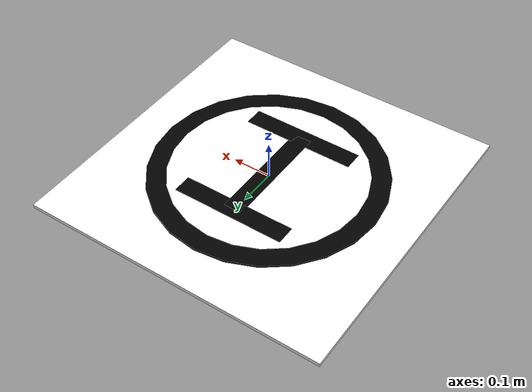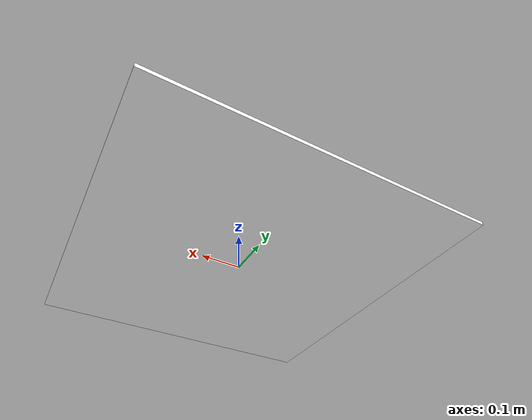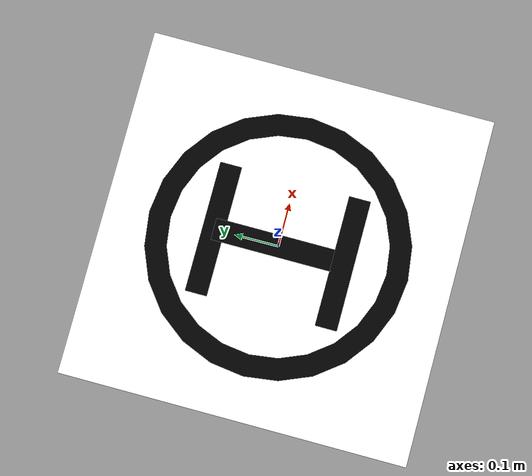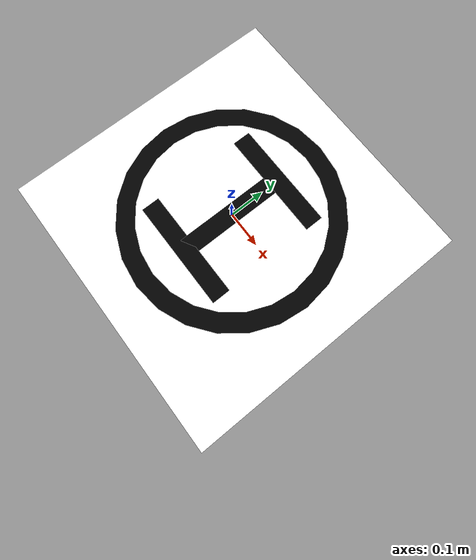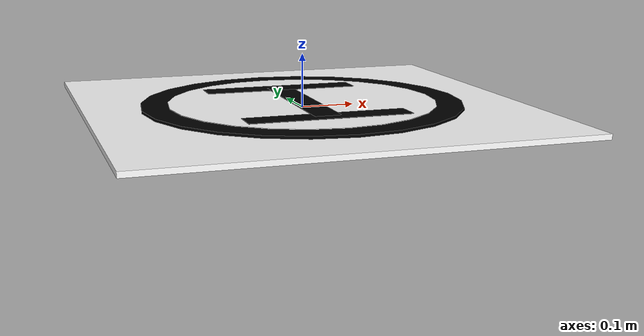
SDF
<sdf version="1.7">
  <model name="land_marker_H_50cm">
    <static>true</static>
    <link name="main_link">
      <!-- 白色基底保持不变 -->
      <visual name="base">
        <geometry>
          <box>
            <size>0.8 0.8 0.01</size>
          </box>
        </geometry>
        <material>
          <ambient>1 1 1 1</ambient>
          <diffuse>1 1 1 1</diffuse>
        </material>
      </visual>

      <!-- 黑色外环保持不变 -->
      <visual name="outer_ring">
        <pose>0 0 0.005 0 0 0</pose>
        <geometry>
          <cylinder>
            <radius>0.3</radius>
            <length>0.01</length>
          </cylinder>
        </geometry>
        <material>
          <ambient>0 0 0 1</ambient>
          <diffuse>0 0 0 1</diffuse>
        </material>
      </visual>

      <!-- 白色内圆保持不变 -->
      <visual name="inner_circle">
        <pose>0 0 0.006 0 0 0</pose>
        <geometry>
          <cylinder>
            <radius>0.25</radius>
            <length>0.01</length>
          </cylinder>
        </geometry>
        <material>
          <ambient>1 1 1 1</ambient>
          <diffuse>1 1 1 1</diffuse>
        </material>
      </visual>

      <!-- 修改后的H图案 -->
      <visual name="h_vertical">
        <pose>0 0 0.007 0 0 0</pose>
        <geometry>
          <box>
            <!-- 竖杆高度缩短为300mm -->
            <size>0.05 0.3 0.01</size>
          </box>
        </geometry>
        <material>
          <ambient>0 0 0 1</ambient>
          <diffuse>0 0 0 1</diffuse>
        </material>
      </visual>

      <!-- 调整后的横杆位置 -->
      <visual name="h_top">
        <!-- Y轴位置适配新高度（150mm处） -->
        <pose>0 0.15 0.007 0 0 0</pose>
        <geometry>
          <box>
            <size>0.3 0.05 0.01</size>
          </box>
        </geometry>
        <material>
          <ambient>0 0 0 1</ambient>
          <diffuse>0 0 0 1</diffuse>
        </material>
      </visual>

      <visual name="h_bottom">
        <!-- Y轴位置适配新高度（-150mm处） -->
        <pose>0 -0.15 0.007 0 0 0</pose>
        <geometry>
          <box>
            <size>0.3 0.05 0.01</size>
          </box>
        </geometry>
        <material>
          <ambient>0 0 0 1</ambient>
          <diffuse>0 0 0 1</diffuse>
        </material>
      </visual>
    </link>
  </model>
</sdf>
